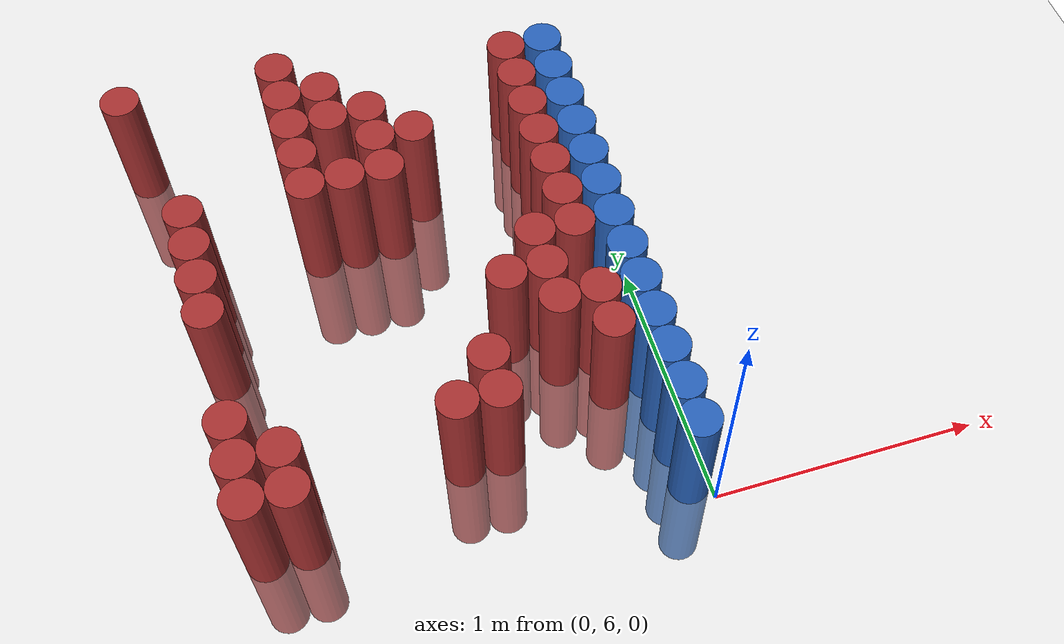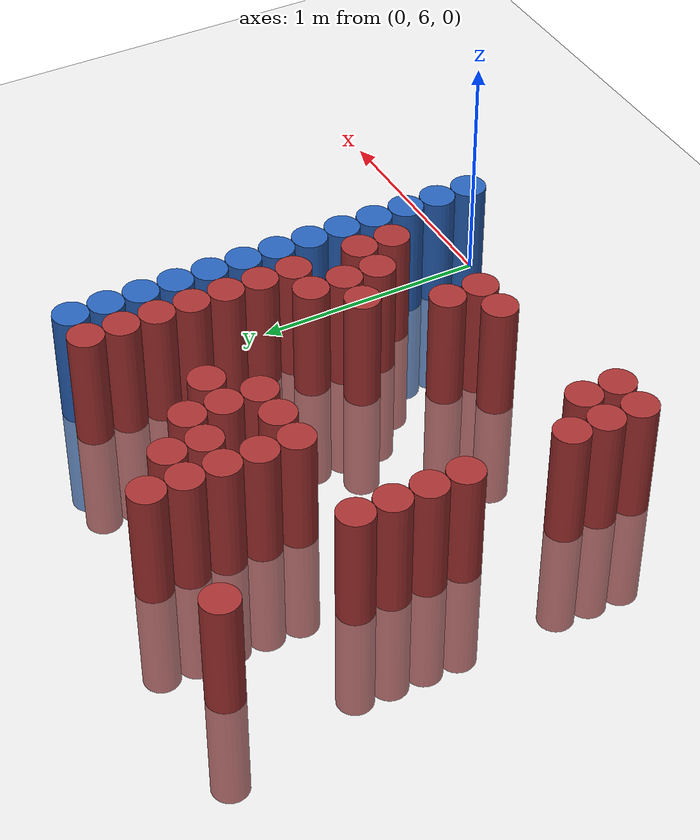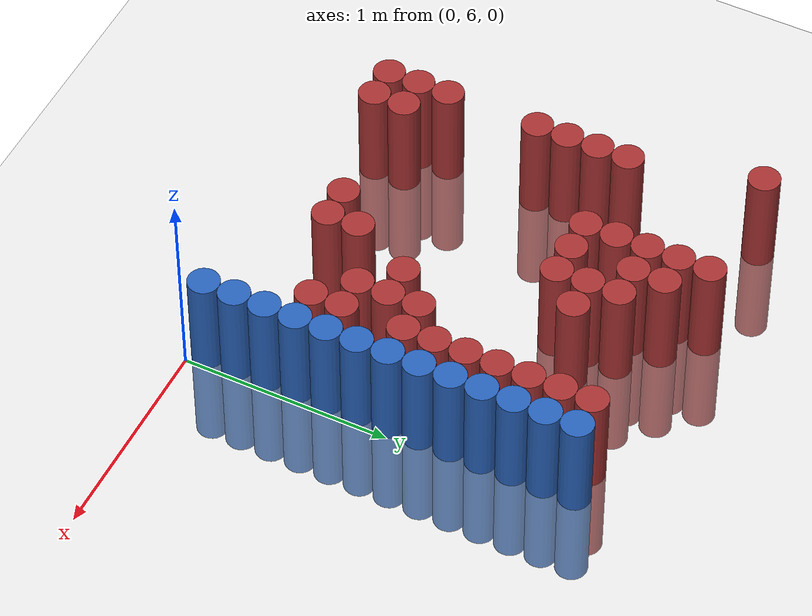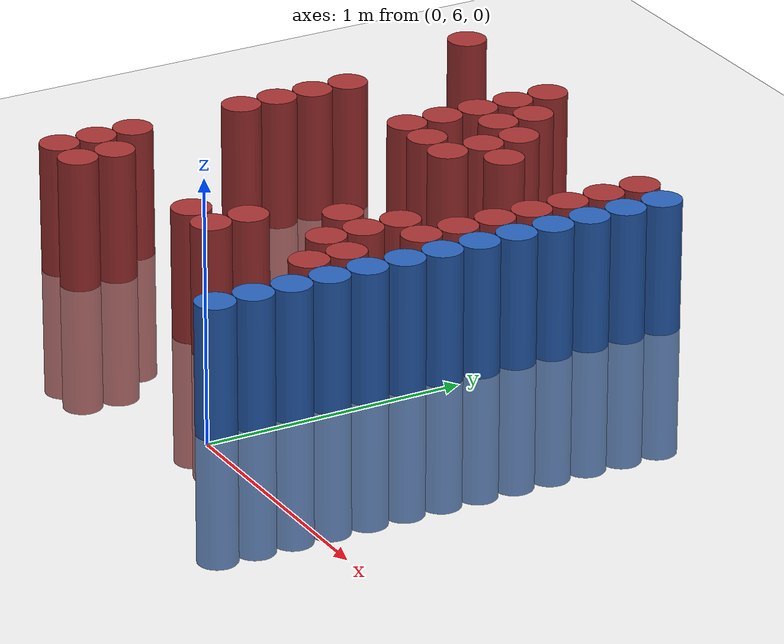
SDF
<sdf version="1.6">
 <world name="default">
  <model name="ground_plane">
   <static>1</static>
   <link name="link">
    <collision name="collision">
     <geometry><plane><normal>0 0 1</normal><size>100 100</size></plane></geometry>
     <surface><friction><ode><mu>100</mu><mu2>50</mu2></ode></friction></surface>
    </collision>
    <visual name="visual">
     <cast_shadows>0</cast_shadows>
     <geometry><plane><normal>0 0 1</normal><size>100 100</size></plane></geometry>
     <material>
      <script><uri>file://media/materials/scripts/gazebo.material</uri><name>Gazebo/Grey</name></script>
     </material>
    </visual>
   </link>
  </model>
  <model name="unit_cylinder_225">
   <static>1</static>
   <pose>-1.725000 8.025000 0.000000 0.000000 0.000000 0.000000</pose>
   <link name="link">
    <inertial>
     <mass>1</mass>
     <inertia><ixx>0.145833</ixx><ixy>0</ixy><ixz>0</ixz><iyy>0.145833</iyy><iyz>0</iyz><izz>0.125</izz></inertia>
    </inertial>
    <collision name="collision">
     <geometry><cylinder><radius>0.075000</radius><length>1</length></cylinder></geometry>
    </collision>
    <visual name="visual">
     <geometry><cylinder><radius>0.075000</radius><length>1</length></cylinder></geometry>
     <material>
      <ambient>0.648000 0.192000 0.192000 1</ambient>
      <diffuse>0.648000 0.192000 0.192000 1</diffuse>
     </material>
     <material>
      <script><name>Gazebo/Grey</name><uri>file://media/materials/scripts/gazebo.material</uri></script>
     </material>
    </visual>
   </link>
  </model>
  <model name="unit_cylinder_229">
   <static>1</static>
   <pose>-1.575000 6.225000 0.000000 0.000000 0.000000 0.000000</pose>
   <link name="link">
    <inertial>
     <mass>1</mass>
     <inertia><ixx>0.145833</ixx><ixy>0</ixy><ixz>0</ixz><iyy>0.145833</iyy><iyz>0</iyz><izz>0.125</izz></inertia>
    </inertial>
    <collision name="collision">
     <geometry><cylinder><radius>0.075000</radius><length>1</length></cylinder></geometry>
    </collision>
    <visual name="visual">
     <geometry><cylinder><radius>0.075000</radius><length>1</length></cylinder></geometry>
     <material>
      <ambient>0.648000 0.192000 0.192000 1</ambient>
      <diffuse>0.648000 0.192000 0.192000 1</diffuse>
     </material>
     <material>
      <script><name>Gazebo/Grey</name><uri>file://media/materials/scripts/gazebo.material</uri></script>
     </material>
    </visual>
   </link>
  </model>
  <model name="unit_cylinder_230">
   <static>1</static>
   <pose>-1.575000 6.375000 0.000000 0.000000 0.000000 0.000000</pose>
   <link name="link">
    <inertial>
     <mass>1</mass>
     <inertia><ixx>0.145833</ixx><ixy>0</ixy><ixz>0</ixz><iyy>0.145833</iyy><iyz>0</iyz><izz>0.125</izz></inertia>
    </inertial>
    <collision name="collision">
     <geometry><cylinder><radius>0.075000</radius><length>1</length></cylinder></geometry>
    </collision>
    <visual name="visual">
     <geometry><cylinder><radius>0.075000</radius><length>1</length></cylinder></geometry>
     <material>
      <ambient>0.648000 0.192000 0.192000 1</ambient>
      <diffuse>0.648000 0.192000 0.192000 1</diffuse>
     </material>
     <material>
      <script><name>Gazebo/Grey</name><uri>file://media/materials/scripts/gazebo.material</uri></script>
     </material>
    </visual>
   </link>
  </model>
  <model name="unit_cylinder_231">
   <static>1</static>
   <pose>-1.575000 6.525000 0.000000 0.000000 0.000000 0.000000</pose>
   <link name="link">
    <inertial>
     <mass>1</mass>
     <inertia><ixx>0.145833</ixx><ixy>0</ixy><ixz>0</ixz><iyy>0.145833</iyy><iyz>0</iyz><izz>0.125</izz></inertia>
    </inertial>
    <collision name="collision">
     <geometry><cylinder><radius>0.075000</radius><length>1</length></cylinder></geometry>
    </collision>
    <visual name="visual">
     <geometry><cylinder><radius>0.075000</radius><length>1</length></cylinder></geometry>
     <material>
      <ambient>0.648000 0.192000 0.192000 1</ambient>
      <diffuse>0.648000 0.192000 0.192000 1</diffuse>
     </material>
     <material>
      <script><name>Gazebo/Grey</name><uri>file://media/materials/scripts/gazebo.material</uri></script>
     </material>
    </visual>
   </link>
  </model>
  <model name="unit_cylinder_232">
   <static>1</static>
   <pose>-1.575000 6.975000 0.000000 0.000000 0.000000 0.000000</pose>
   <link name="link">
    <inertial>
     <mass>1</mass>
     <inertia><ixx>0.145833</ixx><ixy>0</ixy><ixz>0</ixz><iyy>0.145833</iyy><iyz>0</iyz><izz>0.125</izz></inertia>
    </inertial>
    <collision name="collision">
     <geometry><cylinder><radius>0.075000</radius><length>1</length></cylinder></geometry>
    </collision>
    <visual name="visual">
     <geometry><cylinder><radius>0.075000</radius><length>1</length></cylinder></geometry>
     <material>
      <ambient>0.648000 0.192000 0.192000 1</ambient>
      <diffuse>0.648000 0.192000 0.192000 1</diffuse>
     </material>
     <material>
      <script><name>Gazebo/Grey</name><uri>file://media/materials/scripts/gazebo.material</uri></script>
     </material>
    </visual>
   </link>
  </model>
  <model name="unit_cylinder_233">
   <static>1</static>
   <pose>-1.575000 7.125000 0.000000 0.000000 0.000000 0.000000</pose>
   <link name="link">
    <inertial>
     <mass>1</mass>
     <inertia><ixx>0.145833</ixx><ixy>0</ixy><ixz>0</ixz><iyy>0.145833</iyy><iyz>0</iyz><izz>0.125</izz></inertia>
    </inertial>
    <collision name="collision">
     <geometry><cylinder><radius>0.075000</radius><length>1</length></cylinder></geometry>
    </collision>
    <visual name="visual">
     <geometry><cylinder><radius>0.075000</radius><length>1</length></cylinder></geometry>
     <material>
      <ambient>0.648000 0.192000 0.192000 1</ambient>
      <diffuse>0.648000 0.192000 0.192000 1</diffuse>
     </material>
     <material>
      <script><name>Gazebo/Grey</name><uri>file://media/materials/scripts/gazebo.material</uri></script>
     </material>
    </visual>
   </link>
  </model>
  <model name="unit_cylinder_234">
   <static>1</static>
   <pose>-1.575000 7.275000 0.000000 0.000000 0.000000 0.000000</pose>
   <link name="link">
    <inertial>
     <mass>1</mass>
     <inertia><ixx>0.145833</ixx><ixy>0</ixy><ixz>0</ixz><iyy>0.145833</iyy><iyz>0</iyz><izz>0.125</izz></inertia>
    </inertial>
    <collision name="collision">
     <geometry><cylinder><radius>0.075000</radius><length>1</length></cylinder></geometry>
    </collision>
    <visual name="visual">
     <geometry><cylinder><radius>0.075000</radius><length>1</length></cylinder></geometry>
     <material>
      <ambient>0.648000 0.192000 0.192000 1</ambient>
      <diffuse>0.648000 0.192000 0.192000 1</diffuse>
     </material>
     <material>
      <script><name>Gazebo/Grey</name><uri>file://media/materials/scripts/gazebo.material</uri></script>
     </material>
    </visual>
   </link>
  </model>
  <model name="unit_cylinder_235">
   <static>1</static>
   <pose>-1.575000 7.425000 0.000000 0.000000 0.000000 0.000000</pose>
   <link name="link">
    <inertial>
     <mass>1</mass>
     <inertia><ixx>0.145833</ixx><ixy>0</ixy><ixz>0</ixz><iyy>0.145833</iyy><iyz>0</iyz><izz>0.125</izz></inertia>
    </inertial>
    <collision name="collision">
     <geometry><cylinder><radius>0.075000</radius><length>1</length></cylinder></geometry>
    </collision>
    <visual name="visual">
     <geometry><cylinder><radius>0.075000</radius><length>1</length></cylinder></geometry>
     <material>
      <ambient>0.648000 0.192000 0.192000 1</ambient>
      <diffuse>0.648000 0.192000 0.192000 1</diffuse>
     </material>
     <material>
      <script><name>Gazebo/Grey</name><uri>file://media/materials/scripts/gazebo.material</uri></script>
     </material>
    </visual>
   </link>
  </model>
  <model name="unit_cylinder_240">
   <static>1</static>
   <pose>-1.425000 6.225000 0.000000 0.000000 0.000000 0.000000</pose>
   <link name="link">
    <inertial>
     <mass>1</mass>
     <inertia><ixx>0.145833</ixx><ixy>0</ixy><ixz>0</ixz><iyy>0.145833</iyy><iyz>0</iyz><izz>0.125</izz></inertia>
    </inertial>
    <collision name="collision">
     <geometry><cylinder><radius>0.075000</radius><length>1</length></cylinder></geometry>
    </collision>
    <visual name="visual">
     <geometry><cylinder><radius>0.075000</radius><length>1</length></cylinder></geometry>
     <material>
      <ambient>0.648000 0.192000 0.192000 1</ambient>
      <diffuse>0.648000 0.192000 0.192000 1</diffuse>
     </material>
     <material>
      <script><name>Gazebo/Grey</name><uri>file://media/materials/scripts/gazebo.material</uri></script>
     </material>
    </visual>
   </link>
  </model>
  <model name="unit_cylinder_241">
   <static>1</static>
   <pose>-1.425000 6.375000 0.000000 0.000000 0.000000 0.000000</pose>
   <link name="link">
    <inertial>
     <mass>1</mass>
     <inertia><ixx>0.145833</ixx><ixy>0</ixy><ixz>0</ixz><iyy>0.145833</iyy><iyz>0</iyz><izz>0.125</izz></inertia>
    </inertial>
    <collision name="collision">
     <geometry><cylinder><radius>0.075000</radius><length>1</length></cylinder></geometry>
    </collision>
    <visual name="visual">
     <geometry><cylinder><radius>0.075000</radius><length>1</length></cylinder></geometry>
     <material>
      <ambient>0.648000 0.192000 0.192000 1</ambient>
      <diffuse>0.648000 0.192000 0.192000 1</diffuse>
     </material>
     <material>
      <script><name>Gazebo/Grey</name><uri>file://media/materials/scripts/gazebo.material</uri></script>
     </material>
    </visual>
   </link>
  </model>
  <model name="unit_cylinder_255">
   <static>1</static>
   <pose>-1.125000 7.425000 0.000000 0.000000 0.000000 0.000000</pose>
   <link name="link">
    <inertial>
     <mass>1</mass>
     <inertia><ixx>0.145833</ixx><ixy>0</ixy><ixz>0</ixz><iyy>0.145833</iyy><iyz>0</iyz><izz>0.125</izz></inertia>
    </inertial>
    <collision name="collision">
     <geometry><cylinder><radius>0.075000</radius><length>1</length></cylinder></geometry>
    </collision>
    <visual name="visual">
     <geometry><cylinder><radius>0.075000</radius><length>1</length></cylinder></geometry>
     <material>
      <ambient>0.648000 0.192000 0.192000 1</ambient>
      <diffuse>0.648000 0.192000 0.192000 1</diffuse>
     </material>
     <material>
      <script><name>Gazebo/Grey</name><uri>file://media/materials/scripts/gazebo.material</uri></script>
     </material>
    </visual>
   </link>
  </model>
  <model name="unit_cylinder_256">
   <static>1</static>
   <pose>-1.125000 7.575000 0.000000 0.000000 0.000000 0.000000</pose>
   <link name="link">
    <inertial>
     <mass>1</mass>
     <inertia><ixx>0.145833</ixx><ixy>0</ixy><ixz>0</ixz><iyy>0.145833</iyy><iyz>0</iyz><izz>0.125</izz></inertia>
    </inertial>
    <collision name="collision">
     <geometry><cylinder><radius>0.075000</radius><length>1</length></cylinder></geometry>
    </collision>
    <visual name="visual">
     <geometry><cylinder><radius>0.075000</radius><length>1</length></cylinder></geometry>
     <material>
      <ambient>0.648000 0.192000 0.192000 1</ambient>
      <diffuse>0.648000 0.192000 0.192000 1</diffuse>
     </material>
     <material>
      <script><name>Gazebo/Grey</name><uri>file://media/materials/scripts/gazebo.material</uri></script>
     </material>
    </visual>
   </link>
  </model>
  <model name="unit_cylinder_257">
   <static>1</static>
   <pose>-1.125000 7.725000 0.000000 0.000000 0.000000 0.000000</pose>
   <link name="link">
    <inertial>
     <mass>1</mass>
     <inertia><ixx>0.145833</ixx><ixy>0</ixy><ixz>0</ixz><iyy>0.145833</iyy><iyz>0</iyz><izz>0.125</izz></inertia>
    </inertial>
    <collision name="collision">
     <geometry><cylinder><radius>0.075000</radius><length>1</length></cylinder></geometry>
    </collision>
    <visual name="visual">
     <geometry><cylinder><radius>0.075000</radius><length>1</length></cylinder></geometry>
     <material>
      <ambient>0.648000 0.192000 0.192000 1</ambient>
      <diffuse>0.648000 0.192000 0.192000 1</diffuse>
     </material>
     <material>
      <script><name>Gazebo/Grey</name><uri>file://media/materials/scripts/gazebo.material</uri></script>
     </material>
    </visual>
   </link>
  </model>
  <model name="unit_cylinder_258">
   <static>1</static>
   <pose>-1.125000 7.875000 0.000000 0.000000 0.000000 0.000000</pose>
   <link name="link">
    <inertial>
     <mass>1</mass>
     <inertia><ixx>0.145833</ixx><ixy>0</ixy><ixz>0</ixz><iyy>0.145833</iyy><iyz>0</iyz><izz>0.125</izz></inertia>
    </inertial>
    <collision name="collision">
     <geometry><cylinder><radius>0.075000</radius><length>1</length></cylinder></geometry>
    </collision>
    <visual name="visual">
     <geometry><cylinder><radius>0.075000</radius><length>1</length></cylinder></geometry>
     <material>
      <ambient>0.648000 0.192000 0.192000 1</ambient>
      <diffuse>0.648000 0.192000 0.192000 1</diffuse>
     </material>
     <material>
      <script><name>Gazebo/Grey</name><uri>file://media/materials/scripts/gazebo.material</uri></script>
     </material>
    </visual>
   </link>
  </model>
  <model name="unit_cylinder_259">
   <static>1</static>
   <pose>-1.125000 8.025000 0.000000 0.000000 0.000000 0.000000</pose>
   <link name="link">
    <inertial>
     <mass>1</mass>
     <inertia><ixx>0.145833</ixx><ixy>0</ixy><ixz>0</ixz><iyy>0.145833</iyy><iyz>0</iyz><izz>0.125</izz></inertia>
    </inertial>
    <collision name="collision">
     <geometry><cylinder><radius>0.075000</radius><length>1</length></cylinder></geometry>
    </collision>
    <visual name="visual">
     <geometry><cylinder><radius>0.075000</radius><length>1</length></cylinder></geometry>
     <material>
      <ambient>0.648000 0.192000 0.192000 1</ambient>
      <diffuse>0.648000 0.192000 0.192000 1</diffuse>
     </material>
     <material>
      <script><name>Gazebo/Grey</name><uri>file://media/materials/scripts/gazebo.material</uri></script>
     </material>
    </visual>
   </link>
  </model>
  <model name="unit_cylinder_264">
   <static>1</static>
   <pose>-0.975000 7.425000 0.000000 0.000000 0.000000 0.000000</pose>
   <link name="link">
    <inertial>
     <mass>1</mass>
     <inertia><ixx>0.145833</ixx><ixy>0</ixy><ixz>0</ixz><iyy>0.145833</iyy><iyz>0</iyz><izz>0.125</izz></inertia>
    </inertial>
    <collision name="collision">
     <geometry><cylinder><radius>0.075000</radius><length>1</length></cylinder></geometry>
    </collision>
    <visual name="visual">
     <geometry><cylinder><radius>0.075000</radius><length>1</length></cylinder></geometry>
     <material>
      <ambient>0.648000 0.192000 0.192000 1</ambient>
      <diffuse>0.648000 0.192000 0.192000 1</diffuse>
     </material>
     <material>
      <script><name>Gazebo/Grey</name><uri>file://media/materials/scripts/gazebo.material</uri></script>
     </material>
    </visual>
   </link>
  </model>
  <model name="unit_cylinder_265">
   <static>1</static>
   <pose>-0.975000 7.725000 0.000000 0.000000 0.000000 0.000000</pose>
   <link name="link">
    <inertial>
     <mass>1</mass>
     <inertia><ixx>0.145833</ixx><ixy>0</ixy><ixz>0</ixz><iyy>0.145833</iyy><iyz>0</iyz><izz>0.125</izz></inertia>
    </inertial>
    <collision name="collision">
     <geometry><cylinder><radius>0.075000</radius><length>1</length></cylinder></geometry>
    </collision>
    <visual name="visual">
     <geometry><cylinder><radius>0.075000</radius><length>1</length></cylinder></geometry>
     <material>
      <ambient>0.648000 0.192000 0.192000 1</ambient>
      <diffuse>0.648000 0.192000 0.192000 1</diffuse>
     </material>
     <material>
      <script><name>Gazebo/Grey</name><uri>file://media/materials/scripts/gazebo.material</uri></script>
     </material>
    </visual>
   </link>
  </model>
  <model name="unit_cylinder_266">
   <static>1</static>
   <pose>-0.975000 7.875000 0.000000 0.000000 0.000000 0.000000</pose>
   <link name="link">
    <inertial>
     <mass>1</mass>
     <inertia><ixx>0.145833</ixx><ixy>0</ixy><ixz>0</ixz><iyy>0.145833</iyy><iyz>0</iyz><izz>0.125</izz></inertia>
    </inertial>
    <collision name="collision">
     <geometry><cylinder><radius>0.075000</radius><length>1</length></cylinder></geometry>
    </collision>
    <visual name="visual">
     <geometry><cylinder><radius>0.075000</radius><length>1</length></cylinder></geometry>
     <material>
      <ambient>0.648000 0.192000 0.192000 1</ambient>
      <diffuse>0.648000 0.192000 0.192000 1</diffuse>
     </material>
     <material>
      <script><name>Gazebo/Grey</name><uri>file://media/materials/scripts/gazebo.material</uri></script>
     </material>
    </visual>
   </link>
  </model>
  <model name="unit_cylinder_274">
   <static>1</static>
   <pose>-0.825000 6.375000 0.000000 0.000000 0.000000 0.000000</pose>
   <link name="link">
    <inertial>
     <mass>1</mass>
     <inertia><ixx>0.145833</ixx><ixy>0</ixy><ixz>0</ixz><iyy>0.145833</iyy><iyz>0</iyz><izz>0.125</izz></inertia>
    </inertial>
    <collision name="collision">
     <geometry><cylinder><radius>0.075000</radius><length>1</length></cylinder></geometry>
    </collision>
    <visual name="visual">
     <geometry><cylinder><radius>0.075000</radius><length>1</length></cylinder></geometry>
     <material>
      <ambient>0.648000 0.192000 0.192000 1</ambient>
      <diffuse>0.648000 0.192000 0.192000 1</diffuse>
     </material>
     <material>
      <script><name>Gazebo/Grey</name><uri>file://media/materials/scripts/gazebo.material</uri></script>
     </material>
    </visual>
   </link>
  </model>
  <model name="unit_cylinder_275">
   <static>1</static>
   <pose>-0.825000 7.425000 0.000000 0.000000 0.000000 0.000000</pose>
   <link name="link">
    <inertial>
     <mass>1</mass>
     <inertia><ixx>0.145833</ixx><ixy>0</ixy><ixz>0</ixz><iyy>0.145833</iyy><iyz>0</iyz><izz>0.125</izz></inertia>
    </inertial>
    <collision name="collision">
     <geometry><cylinder><radius>0.075000</radius><length>1</length></cylinder></geometry>
    </collision>
    <visual name="visual">
     <geometry><cylinder><radius>0.075000</radius><length>1</length></cylinder></geometry>
     <material>
      <ambient>0.648000 0.192000 0.192000 1</ambient>
      <diffuse>0.648000 0.192000 0.192000 1</diffuse>
     </material>
     <material>
      <script><name>Gazebo/Grey</name><uri>file://media/materials/scripts/gazebo.material</uri></script>
     </material>
    </visual>
   </link>
  </model>
  <model name="unit_cylinder_276">
   <static>1</static>
   <pose>-0.825000 7.575000 0.000000 0.000000 0.000000 0.000000</pose>
   <link name="link">
    <inertial>
     <mass>1</mass>
     <inertia><ixx>0.145833</ixx><ixy>0</ixy><ixz>0</ixz><iyy>0.145833</iyy><iyz>0</iyz><izz>0.125</izz></inertia>
    </inertial>
    <collision name="collision">
     <geometry><cylinder><radius>0.075000</radius><length>1</length></cylinder></geometry>
    </collision>
    <visual name="visual">
     <geometry><cylinder><radius>0.075000</radius><length>1</length></cylinder></geometry>
     <material>
      <ambient>0.648000 0.192000 0.192000 1</ambient>
      <diffuse>0.648000 0.192000 0.192000 1</diffuse>
     </material>
     <material>
      <script><name>Gazebo/Grey</name><uri>file://media/materials/scripts/gazebo.material</uri></script>
     </material>
    </visual>
   </link>
  </model>
  <model name="unit_cylinder_277">
   <static>1</static>
   <pose>-0.825000 7.725000 0.000000 0.000000 0.000000 0.000000</pose>
   <link name="link">
    <inertial>
     <mass>1</mass>
     <inertia><ixx>0.145833</ixx><ixy>0</ixy><ixz>0</ixz><iyy>0.145833</iyy><iyz>0</iyz><izz>0.125</izz></inertia>
    </inertial>
    <collision name="collision">
     <geometry><cylinder><radius>0.075000</radius><length>1</length></cylinder></geometry>
    </collision>
    <visual name="visual">
     <geometry><cylinder><radius>0.075000</radius><length>1</length></cylinder></geometry>
     <material>
      <ambient>0.648000 0.192000 0.192000 1</ambient>
      <diffuse>0.648000 0.192000 0.192000 1</diffuse>
     </material>
     <material>
      <script><name>Gazebo/Grey</name><uri>file://media/materials/scripts/gazebo.material</uri></script>
     </material>
    </visual>
   </link>
  </model>
  <model name="unit_cylinder_285">
   <static>1</static>
   <pose>-0.675000 6.375000 0.000000 0.000000 0.000000 0.000000</pose>
   <link name="link">
    <inertial>
     <mass>1</mass>
     <inertia><ixx>0.145833</ixx><ixy>0</ixy><ixz>0</ixz><iyy>0.145833</iyy><iyz>0</iyz><izz>0.125</izz></inertia>
    </inertial>
    <collision name="collision">
     <geometry><cylinder><radius>0.075000</radius><length>1</length></cylinder></geometry>
    </collision>
    <visual name="visual">
     <geometry><cylinder><radius>0.075000</radius><length>1</length></cylinder></geometry>
     <material>
      <ambient>0.648000 0.192000 0.192000 1</ambient>
      <diffuse>0.648000 0.192000 0.192000 1</diffuse>
     </material>
     <material>
      <script><name>Gazebo/Grey</name><uri>file://media/materials/scripts/gazebo.material</uri></script>
     </material>
    </visual>
   </link>
  </model>
  <model name="unit_cylinder_286">
   <static>1</static>
   <pose>-0.675000 6.525000 0.000000 0.000000 0.000000 0.000000</pose>
   <link name="link">
    <inertial>
     <mass>1</mass>
     <inertia><ixx>0.145833</ixx><ixy>0</ixy><ixz>0</ixz><iyy>0.145833</iyy><iyz>0</iyz><izz>0.125</izz></inertia>
    </inertial>
    <collision name="collision">
     <geometry><cylinder><radius>0.075000</radius><length>1</length></cylinder></geometry>
    </collision>
    <visual name="visual">
     <geometry><cylinder><radius>0.075000</radius><length>1</length></cylinder></geometry>
     <material>
      <ambient>0.648000 0.192000 0.192000 1</ambient>
      <diffuse>0.648000 0.192000 0.192000 1</diffuse>
     </material>
     <material>
      <script><name>Gazebo/Grey</name><uri>file://media/materials/scripts/gazebo.material</uri></script>
     </material>
    </visual>
   </link>
  </model>
  <model name="unit_cylinder_287">
   <static>1</static>
   <pose>-0.675000 7.575000 0.000000 0.000000 0.000000 0.000000</pose>
   <link name="link">
    <inertial>
     <mass>1</mass>
     <inertia><ixx>0.145833</ixx><ixy>0</ixy><ixz>0</ixz><iyy>0.145833</iyy><iyz>0</iyz><izz>0.125</izz></inertia>
    </inertial>
    <collision name="collision">
     <geometry><cylinder><radius>0.075000</radius><length>1</length></cylinder></geometry>
    </collision>
    <visual name="visual">
     <geometry><cylinder><radius>0.075000</radius><length>1</length></cylinder></geometry>
     <material>
      <ambient>0.648000 0.192000 0.192000 1</ambient>
      <diffuse>0.648000 0.192000 0.192000 1</diffuse>
     </material>
     <material>
      <script><name>Gazebo/Grey</name><uri>file://media/materials/scripts/gazebo.material</uri></script>
     </material>
    </visual>
   </link>
  </model>
  <model name="unit_cylinder_292">
   <static>1</static>
   <pose>-0.525000 6.825000 0.000000 0.000000 0.000000 0.000000</pose>
   <link name="link">
    <inertial>
     <mass>1</mass>
     <inertia><ixx>0.145833</ixx><ixy>0</ixy><ixz>0</ixz><iyy>0.145833</iyy><iyz>0</iyz><izz>0.125</izz></inertia>
    </inertial>
    <collision name="collision">
     <geometry><cylinder><radius>0.075000</radius><length>1</length></cylinder></geometry>
    </collision>
    <visual name="visual">
     <geometry><cylinder><radius>0.075000</radius><length>1</length></cylinder></geometry>
     <material>
      <ambient>0.648000 0.192000 0.192000 1</ambient>
      <diffuse>0.648000 0.192000 0.192000 1</diffuse>
     </material>
     <material>
      <script><name>Gazebo/Grey</name><uri>file://media/materials/scripts/gazebo.material</uri></script>
     </material>
    </visual>
   </link>
  </model>
  <model name="unit_cylinder_298">
   <static>1</static>
   <pose>-0.375000 6.675000 0.000000 0.000000 0.000000 0.000000</pose>
   <link name="link">
    <inertial>
     <mass>1</mass>
     <inertia><ixx>0.145833</ixx><ixy>0</ixy><ixz>0</ixz><iyy>0.145833</iyy><iyz>0</iyz><izz>0.125</izz></inertia>
    </inertial>
    <collision name="collision">
     <geometry><cylinder><radius>0.075000</radius><length>1</length></cylinder></geometry>
    </collision>
    <visual name="visual">
     <geometry><cylinder><radius>0.075000</radius><length>1</length></cylinder></geometry>
     <material>
      <ambient>0.648000 0.192000 0.192000 1</ambient>
      <diffuse>0.648000 0.192000 0.192000 1</diffuse>
     </material>
     <material>
      <script><name>Gazebo/Grey</name><uri>file://media/materials/scripts/gazebo.material</uri></script>
     </material>
    </visual>
   </link>
  </model>
  <model name="unit_cylinder_299">
   <static>1</static>
   <pose>-0.375000 6.825000 0.000000 0.000000 0.000000 0.000000</pose>
   <link name="link">
    <inertial>
     <mass>1</mass>
     <inertia><ixx>0.145833</ixx><ixy>0</ixy><ixz>0</ixz><iyy>0.145833</iyy><iyz>0</iyz><izz>0.125</izz></inertia>
    </inertial>
    <collision name="collision">
     <geometry><cylinder><radius>0.075000</radius><length>1</length></cylinder></geometry>
    </collision>
    <visual name="visual">
     <geometry><cylinder><radius>0.075000</radius><length>1</length></cylinder></geometry>
     <material>
      <ambient>0.648000 0.192000 0.192000 1</ambient>
      <diffuse>0.648000 0.192000 0.192000 1</diffuse>
     </material>
     <material>
      <script><name>Gazebo/Grey</name><uri>file://media/materials/scripts/gazebo.material</uri></script>
     </material>
    </visual>
   </link>
  </model>
  <model name="unit_cylinder_300">
   <static>1</static>
   <pose>-0.375000 6.975000 0.000000 0.000000 0.000000 0.000000</pose>
   <link name="link">
    <inertial>
     <mass>1</mass>
     <inertia><ixx>0.145833</ixx><ixy>0</ixy><ixz>0</ixz><iyy>0.145833</iyy><iyz>0</iyz><izz>0.125</izz></inertia>
    </inertial>
    <collision name="collision">
     <geometry><cylinder><radius>0.075000</radius><length>1</length></cylinder></geometry>
    </collision>
    <visual name="visual">
     <geometry><cylinder><radius>0.075000</radius><length>1</length></cylinder></geometry>
     <material>
      <ambient>0.648000 0.192000 0.192000 1</ambient>
      <diffuse>0.648000 0.192000 0.192000 1</diffuse>
     </material>
     <material>
      <script><name>Gazebo/Grey</name><uri>file://media/materials/scripts/gazebo.material</uri></script>
     </material>
    </visual>
   </link>
  </model>
  <model name="unit_cylinder_308">
   <static>1</static>
   <pose>-0.225000 6.525000 0.000000 0.000000 0.000000 0.000000</pose>
   <link name="link">
    <inertial>
     <mass>1</mass>
     <inertia><ixx>0.145833</ixx><ixy>0</ixy><ixz>0</ixz><iyy>0.145833</iyy><iyz>0</iyz><izz>0.125</izz></inertia>
    </inertial>
    <collision name="collision">
     <geometry><cylinder><radius>0.075000</radius><length>1</length></cylinder></geometry>
    </collision>
    <visual name="visual">
     <geometry><cylinder><radius>0.075000</radius><length>1</length></cylinder></geometry>
     <material>
      <ambient>0.648000 0.192000 0.192000 1</ambient>
      <diffuse>0.648000 0.192000 0.192000 1</diffuse>
     </material>
     <material>
      <script><name>Gazebo/Grey</name><uri>file://media/materials/scripts/gazebo.material</uri></script>
     </material>
    </visual>
   </link>
  </model>
  <model name="unit_cylinder_309">
   <static>1</static>
   <pose>-0.225000 6.675000 0.000000 0.000000 0.000000 0.000000</pose>
   <link name="link">
    <inertial>
     <mass>1</mass>
     <inertia><ixx>0.145833</ixx><ixy>0</ixy><ixz>0</ixz><iyy>0.145833</iyy><iyz>0</iyz><izz>0.125</izz></inertia>
    </inertial>
    <collision name="collision">
     <geometry><cylinder><radius>0.075000</radius><length>1</length></cylinder></geometry>
    </collision>
    <visual name="visual">
     <geometry><cylinder><radius>0.075000</radius><length>1</length></cylinder></geometry>
     <material>
      <ambient>0.648000 0.192000 0.192000 1</ambient>
      <diffuse>0.648000 0.192000 0.192000 1</diffuse>
     </material>
     <material>
      <script><name>Gazebo/Grey</name><uri>file://media/materials/scripts/gazebo.material</uri></script>
     </material>
    </visual>
   </link>
  </model>
  <model name="unit_cylinder_310">
   <static>1</static>
   <pose>-0.225000 6.975000 0.000000 0.000000 0.000000 0.000000</pose>
   <link name="link">
    <inertial>
     <mass>1</mass>
     <inertia><ixx>0.145833</ixx><ixy>0</ixy><ixz>0</ixz><iyy>0.145833</iyy><iyz>0</iyz><izz>0.125</izz></inertia>
    </inertial>
    <collision name="collision">
     <geometry><cylinder><radius>0.075000</radius><length>1</length></cylinder></geometry>
    </collision>
    <visual name="visual">
     <geometry><cylinder><radius>0.075000</radius><length>1</length></cylinder></geometry>
     <material>
      <ambient>0.648000 0.192000 0.192000 1</ambient>
      <diffuse>0.648000 0.192000 0.192000 1</diffuse>
     </material>
     <material>
      <script><name>Gazebo/Grey</name><uri>file://media/materials/scripts/gazebo.material</uri></script>
     </material>
    </visual>
   </link>
  </model>
  <model name="unit_cylinder_311">
   <static>1</static>
   <pose>-0.225000 7.125000 0.000000 0.000000 0.000000 0.000000</pose>
   <link name="link">
    <inertial>
     <mass>1</mass>
     <inertia><ixx>0.145833</ixx><ixy>0</ixy><ixz>0</ixz><iyy>0.145833</iyy><iyz>0</iyz><izz>0.125</izz></inertia>
    </inertial>
    <collision name="collision">
     <geometry><cylinder><radius>0.075000</radius><length>1</length></cylinder></geometry>
    </collision>
    <visual name="visual">
     <geometry><cylinder><radius>0.075000</radius><length>1</length></cylinder></geometry>
     <material>
      <ambient>0.648000 0.192000 0.192000 1</ambient>
      <diffuse>0.648000 0.192000 0.192000 1</diffuse>
     </material>
     <material>
      <script><name>Gazebo/Grey</name><uri>file://media/materials/scripts/gazebo.material</uri></script>
     </material>
    </visual>
   </link>
  </model>
  <model name="unit_cylinder_312">
   <static>1</static>
   <pose>-0.225000 7.275000 0.000000 0.000000 0.000000 0.000000</pose>
   <link name="link">
    <inertial>
     <mass>1</mass>
     <inertia><ixx>0.145833</ixx><ixy>0</ixy><ixz>0</ixz><iyy>0.145833</iyy><iyz>0</iyz><izz>0.125</izz></inertia>
    </inertial>
    <collision name="collision">
     <geometry><cylinder><radius>0.075000</radius><length>1</length></cylinder></geometry>
    </collision>
    <visual name="visual">
     <geometry><cylinder><radius>0.075000</radius><length>1</length></cylinder></geometry>
     <material>
      <ambient>0.648000 0.192000 0.192000 1</ambient>
      <diffuse>0.648000 0.192000 0.192000 1</diffuse>
     </material>
     <material>
      <script><name>Gazebo/Grey</name><uri>file://media/materials/scripts/gazebo.material</uri></script>
     </material>
    </visual>
   </link>
  </model>
  <model name="unit_cylinder_313">
   <static>1</static>
   <pose>-0.225000 7.425000 0.000000 0.000000 0.000000 0.000000</pose>
   <link name="link">
    <inertial>
     <mass>1</mass>
     <inertia><ixx>0.145833</ixx><ixy>0</ixy><ixz>0</ixz><iyy>0.145833</iyy><iyz>0</iyz><izz>0.125</izz></inertia>
    </inertial>
    <collision name="collision">
     <geometry><cylinder><radius>0.075000</radius><length>1</length></cylinder></geometry>
    </collision>
    <visual name="visual">
     <geometry><cylinder><radius>0.075000</radius><length>1</length></cylinder></geometry>
     <material>
      <ambient>0.648000 0.192000 0.192000 1</ambient>
      <diffuse>0.648000 0.192000 0.192000 1</diffuse>
     </material>
     <material>
      <script><name>Gazebo/Grey</name><uri>file://media/materials/scripts/gazebo.material</uri></script>
     </material>
    </visual>
   </link>
  </model>
  <model name="unit_cylinder_314">
   <static>1</static>
   <pose>-0.225000 7.575000 0.000000 0.000000 0.000000 0.000000</pose>
   <link name="link">
    <inertial>
     <mass>1</mass>
     <inertia><ixx>0.145833</ixx><ixy>0</ixy><ixz>0</ixz><iyy>0.145833</iyy><iyz>0</iyz><izz>0.125</izz></inertia>
    </inertial>
    <collision name="collision">
     <geometry><cylinder><radius>0.075000</radius><length>1</length></cylinder></geometry>
    </collision>
    <visual name="visual">
     <geometry><cylinder><radius>0.075000</radius><length>1</length></cylinder></geometry>
     <material>
      <ambient>0.648000 0.192000 0.192000 1</ambient>
      <diffuse>0.648000 0.192000 0.192000 1</diffuse>
     </material>
     <material>
      <script><name>Gazebo/Grey</name><uri>file://media/materials/scripts/gazebo.material</uri></script>
     </material>
    </visual>
   </link>
  </model>
  <model name="unit_cylinder_315">
   <static>1</static>
   <pose>-0.225000 7.725000 0.000000 0.000000 0.000000 0.000000</pose>
   <link name="link">
    <inertial>
     <mass>1</mass>
     <inertia><ixx>0.145833</ixx><ixy>0</ixy><ixz>0</ixz><iyy>0.145833</iyy><iyz>0</iyz><izz>0.125</izz></inertia>
    </inertial>
    <collision name="collision">
     <geometry><cylinder><radius>0.075000</radius><length>1</length></cylinder></geometry>
    </collision>
    <visual name="visual">
     <geometry><cylinder><radius>0.075000</radius><length>1</length></cylinder></geometry>
     <material>
      <ambient>0.648000 0.192000 0.192000 1</ambient>
      <diffuse>0.648000 0.192000 0.192000 1</diffuse>
     </material>
     <material>
      <script><name>Gazebo/Grey</name><uri>file://media/materials/scripts/gazebo.material</uri></script>
     </material>
    </visual>
   </link>
  </model>
  <model name="unit_cylinder_316">
   <static>1</static>
   <pose>-0.225000 7.875000 0.000000 0.000000 0.000000 0.000000</pose>
   <link name="link">
    <inertial>
     <mass>1</mass>
     <inertia><ixx>0.145833</ixx><ixy>0</ixy><ixz>0</ixz><iyy>0.145833</iyy><iyz>0</iyz><izz>0.125</izz></inertia>
    </inertial>
    <collision name="collision">
     <geometry><cylinder><radius>0.075000</radius><length>1</length></cylinder></geometry>
    </collision>
    <visual name="visual">
     <geometry><cylinder><radius>0.075000</radius><length>1</length></cylinder></geometry>
     <material>
      <ambient>0.648000 0.192000 0.192000 1</ambient>
      <diffuse>0.648000 0.192000 0.192000 1</diffuse>
     </material>
     <material>
      <script><name>Gazebo/Grey</name><uri>file://media/materials/scripts/gazebo.material</uri></script>
     </material>
    </visual>
   </link>
  </model>
  <model name="unit_cylinder_332">
   <static>1</static>
   <pose>-0.075000 6.075000 0.000000 0.000000 0.000000 0.000000</pose>
   <link name="link">
    <inertial>
     <mass>1</mass>
     <inertia><ixx>0.145833</ixx><ixy>0</ixy><ixz>0</ixz><iyy>0.145833</iyy><iyz>0</iyz><izz>0.125</izz></inertia>
    </inertial>
    <collision name="collision">
     <geometry><cylinder><radius>0.075000</radius><length>1</length></cylinder></geometry>
    </collision>
    <visual name="visual">
     <geometry><cylinder><radius>0.075000</radius><length>1</length></cylinder></geometry>
     <material>
      <ambient>0.152000 0.379000 0.720000 1</ambient>
      <diffuse>0.152000 0.379000 0.720000 1</diffuse>
     </material>
     <material>
      <script><name>Gazebo/Grey</name><uri>file://media/materials/scripts/gazebo.material</uri></script>
     </material>
    </visual>
   </link>
  </model>
  <model name="unit_cylinder_333">
   <static>1</static>
   <pose>-0.075000 6.225000 0.000000 0.000000 0.000000 0.000000</pose>
   <link name="link">
    <inertial>
     <mass>1</mass>
     <inertia><ixx>0.145833</ixx><ixy>0</ixy><ixz>0</ixz><iyy>0.145833</iyy><iyz>0</iyz><izz>0.125</izz></inertia>
    </inertial>
    <collision name="collision">
     <geometry><cylinder><radius>0.075000</radius><length>1</length></cylinder></geometry>
    </collision>
    <visual name="visual">
     <geometry><cylinder><radius>0.075000</radius><length>1</length></cylinder></geometry>
     <material>
      <ambient>0.152000 0.379000 0.720000 1</ambient>
      <diffuse>0.152000 0.379000 0.720000 1</diffuse>
     </material>
     <material>
      <script><name>Gazebo/Grey</name><uri>file://media/materials/scripts/gazebo.material</uri></script>
     </material>
    </visual>
   </link>
  </model>
  <model name="unit_cylinder_334">
   <static>1</static>
   <pose>-0.075000 6.375000 0.000000 0.000000 0.000000 0.000000</pose>
   <link name="link">
    <inertial>
     <mass>1</mass>
     <inertia><ixx>0.145833</ixx><ixy>0</ixy><ixz>0</ixz><iyy>0.145833</iyy><iyz>0</iyz><izz>0.125</izz></inertia>
    </inertial>
    <collision name="collision">
     <geometry><cylinder><radius>0.075000</radius><length>1</length></cylinder></geometry>
    </collision>
    <visual name="visual">
     <geometry><cylinder><radius>0.075000</radius><length>1</length></cylinder></geometry>
     <material>
      <ambient>0.152000 0.379000 0.720000 1</ambient>
      <diffuse>0.152000 0.379000 0.720000 1</diffuse>
     </material>
     <material>
      <script><name>Gazebo/Grey</name><uri>file://media/materials/scripts/gazebo.material</uri></script>
     </material>
    </visual>
   </link>
  </model>
  <model name="unit_cylinder_335">
   <static>1</static>
   <pose>-0.075000 6.525000 0.000000 0.000000 0.000000 0.000000</pose>
   <link name="link">
    <inertial>
     <mass>1</mass>
     <inertia><ixx>0.145833</ixx><ixy>0</ixy><ixz>0</ixz><iyy>0.145833</iyy><iyz>0</iyz><izz>0.125</izz></inertia>
    </inertial>
    <collision name="collision">
     <geometry><cylinder><radius>0.075000</radius><length>1</length></cylinder></geometry>
    </collision>
    <visual name="visual">
     <geometry><cylinder><radius>0.075000</radius><length>1</length></cylinder></geometry>
     <material>
      <ambient>0.152000 0.379000 0.720000 1</ambient>
      <diffuse>0.152000 0.379000 0.720000 1</diffuse>
     </material>
     <material>
      <script><name>Gazebo/Grey</name><uri>file://media/materials/scripts/gazebo.material</uri></script>
     </material>
    </visual>
   </link>
  </model>
  <model name="unit_cylinder_336">
   <static>1</static>
   <pose>-0.075000 6.675000 0.000000 0.000000 0.000000 0.000000</pose>
   <link name="link">
    <inertial>
     <mass>1</mass>
     <inertia><ixx>0.145833</ixx><ixy>0</ixy><ixz>0</ixz><iyy>0.145833</iyy><iyz>0</iyz><izz>0.125</izz></inertia>
    </inertial>
    <collision name="collision">
     <geometry><cylinder><radius>0.075000</radius><length>1</length></cylinder></geometry>
    </collision>
    <visual name="visual">
     <geometry><cylinder><radius>0.075000</radius><length>1</length></cylinder></geometry>
     <material>
      <ambient>0.152000 0.379000 0.720000 1</ambient>
      <diffuse>0.152000 0.379000 0.720000 1</diffuse>
     </material>
     <material>
      <script><name>Gazebo/Grey</name><uri>file://media/materials/scripts/gazebo.material</uri></script>
     </material>
    </visual>
   </link>
  </model>
  <model name="unit_cylinder_337">
   <static>1</static>
   <pose>-0.075000 6.825000 0.000000 0.000000 0.000000 0.000000</pose>
   <link name="link">
    <inertial>
     <mass>1</mass>
     <inertia><ixx>0.145833</ixx><ixy>0</ixy><ixz>0</ixz><iyy>0.145833</iyy><iyz>0</iyz><izz>0.125</izz></inertia>
    </inertial>
    <collision name="collision">
     <geometry><cylinder><radius>0.075000</radius><length>1</length></cylinder></geometry>
    </collision>
    <visual name="visual">
     <geometry><cylinder><radius>0.075000</radius><length>1</length></cylinder></geometry>
     <material>
      <ambient>0.152000 0.379000 0.720000 1</ambient>
      <diffuse>0.152000 0.379000 0.720000 1</diffuse>
     </material>
     <material>
      <script><name>Gazebo/Grey</name><uri>file://media/materials/scripts/gazebo.material</uri></script>
     </material>
    </visual>
   </link>
  </model>
  <model name="unit_cylinder_338">
   <static>1</static>
   <pose>-0.075000 6.975000 0.000000 0.000000 0.000000 0.000000</pose>
   <link name="link">
    <inertial>
     <mass>1</mass>
     <inertia><ixx>0.145833</ixx><ixy>0</ixy><ixz>0</ixz><iyy>0.145833</iyy><iyz>0</iyz><izz>0.125</izz></inertia>
    </inertial>
    <collision name="collision">
     <geometry><cylinder><radius>0.075000</radius><length>1</length></cylinder></geometry>
    </collision>
    <visual name="visual">
     <geometry><cylinder><radius>0.075000</radius><length>1</length></cylinder></geometry>
     <material>
      <ambient>0.152000 0.379000 0.720000 1</ambient>
      <diffuse>0.152000 0.379000 0.720000 1</diffuse>
     </material>
     <material>
      <script><name>Gazebo/Grey</name><uri>file://media/materials/scripts/gazebo.material</uri></script>
     </material>
    </visual>
   </link>
  </model>
  <model name="unit_cylinder_339">
   <static>1</static>
   <pose>-0.075000 7.125000 0.000000 0.000000 0.000000 0.000000</pose>
   <link name="link">
    <inertial>
     <mass>1</mass>
     <inertia><ixx>0.145833</ixx><ixy>0</ixy><ixz>0</ixz><iyy>0.145833</iyy><iyz>0</iyz><izz>0.125</izz></inertia>
    </inertial>
    <collision name="collision">
     <geometry><cylinder><radius>0.075000</radius><length>1</length></cylinder></geometry>
    </collision>
    <visual name="visual">
     <geometry><cylinder><radius>0.075000</radius><length>1</length></cylinder></geometry>
     <material>
      <ambient>0.152000 0.379000 0.720000 1</ambient>
      <diffuse>0.152000 0.379000 0.720000 1</diffuse>
     </material>
     <material>
      <script><name>Gazebo/Grey</name><uri>file://media/materials/scripts/gazebo.material</uri></script>
     </material>
    </visual>
   </link>
  </model>
  <model name="unit_cylinder_340">
   <static>1</static>
   <pose>-0.075000 7.275000 0.000000 0.000000 0.000000 0.000000</pose>
   <link name="link">
    <inertial>
     <mass>1</mass>
     <inertia><ixx>0.145833</ixx><ixy>0</ixy><ixz>0</ixz><iyy>0.145833</iyy><iyz>0</iyz><izz>0.125</izz></inertia>
    </inertial>
    <collision name="collision">
     <geometry><cylinder><radius>0.075000</radius><length>1</length></cylinder></geometry>
    </collision>
    <visual name="visual">
     <geometry><cylinder><radius>0.075000</radius><length>1</length></cylinder></geometry>
     <material>
      <ambient>0.152000 0.379000 0.720000 1</ambient>
      <diffuse>0.152000 0.379000 0.720000 1</diffuse>
     </material>
     <material>
      <script><name>Gazebo/Grey</name><uri>file://media/materials/scripts/gazebo.material</uri></script>
     </material>
    </visual>
   </link>
  </model>
  <model name="unit_cylinder_341">
   <static>1</static>
   <pose>-0.075000 7.425000 0.000000 0.000000 0.000000 0.000000</pose>
   <link name="link">
    <inertial>
     <mass>1</mass>
     <inertia><ixx>0.145833</ixx><ixy>0</ixy><ixz>0</ixz><iyy>0.145833</iyy><iyz>0</iyz><izz>0.125</izz></inertia>
    </inertial>
    <collision name="collision">
     <geometry><cylinder><radius>0.075000</radius><length>1</length></cylinder></geometry>
    </collision>
    <visual name="visual">
     <geometry><cylinder><radius>0.075000</radius><length>1</length></cylinder></geometry>
     <material>
      <ambient>0.152000 0.379000 0.720000 1</ambient>
      <diffuse>0.152000 0.379000 0.720000 1</diffuse>
     </material>
     <material>
      <script><name>Gazebo/Grey</name><uri>file://media/materials/scripts/gazebo.material</uri></script>
     </material>
    </visual>
   </link>
  </model>
  <model name="unit_cylinder_342">
   <static>1</static>
   <pose>-0.075000 7.575000 0.000000 0.000000 0.000000 0.000000</pose>
   <link name="link">
    <inertial>
     <mass>1</mass>
     <inertia><ixx>0.145833</ixx><ixy>0</ixy><ixz>0</ixz><iyy>0.145833</iyy><iyz>0</iyz><izz>0.125</izz></inertia>
    </inertial>
    <collision name="collision">
     <geometry><cylinder><radius>0.075000</radius><length>1</length></cylinder></geometry>
    </collision>
    <visual name="visual">
     <geometry><cylinder><radius>0.075000</radius><length>1</length></cylinder></geometry>
     <material>
      <ambient>0.152000 0.379000 0.720000 1</ambient>
      <diffuse>0.152000 0.379000 0.720000 1</diffuse>
     </material>
     <material>
      <script><name>Gazebo/Grey</name><uri>file://media/materials/scripts/gazebo.material</uri></script>
     </material>
    </visual>
   </link>
  </model>
  <model name="unit_cylinder_343">
   <static>1</static>
   <pose>-0.075000 7.725000 0.000000 0.000000 0.000000 0.000000</pose>
   <link name="link">
    <inertial>
     <mass>1</mass>
     <inertia><ixx>0.145833</ixx><ixy>0</ixy><ixz>0</ixz><iyy>0.145833</iyy><iyz>0</iyz><izz>0.125</izz></inertia>
    </inertial>
    <collision name="collision">
     <geometry><cylinder><radius>0.075000</radius><length>1</length></cylinder></geometry>
    </collision>
    <visual name="visual">
     <geometry><cylinder><radius>0.075000</radius><length>1</length></cylinder></geometry>
     <material>
      <ambient>0.152000 0.379000 0.720000 1</ambient>
      <diffuse>0.152000 0.379000 0.720000 1</diffuse>
     </material>
     <material>
      <script><name>Gazebo/Grey</name><uri>file://media/materials/scripts/gazebo.material</uri></script>
     </material>
    </visual>
   </link>
  </model>
  <model name="unit_cylinder_344">
   <static>1</static>
   <pose>-0.075000 7.875000 0.000000 0.000000 0.000000 0.000000</pose>
   <link name="link">
    <inertial>
     <mass>1</mass>
     <inertia><ixx>0.145833</ixx><ixy>0</ixy><ixz>0</ixz><iyy>0.145833</iyy><iyz>0</iyz><izz>0.125</izz></inertia>
    </inertial>
    <collision name="collision">
     <geometry><cylinder><radius>0.075000</radius><length>1</length></cylinder></geometry>
    </collision>
    <visual name="visual">
     <geometry><cylinder><radius>0.075000</radius><length>1</length></cylinder></geometry>
     <material>
      <ambient>0.152000 0.379000 0.720000 1</ambient>
      <diffuse>0.152000 0.379000 0.720000 1</diffuse>
     </material>
     <material>
      <script><name>Gazebo/Grey</name><uri>file://media/materials/scripts/gazebo.material</uri></script>
     </material>
    </visual>
   </link>
  </model>
 </world>
</sdf>
